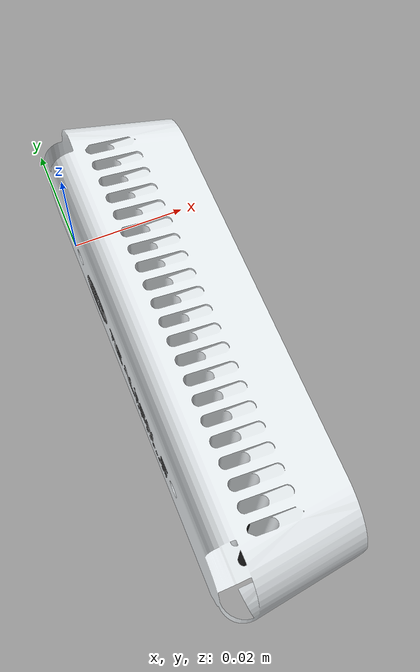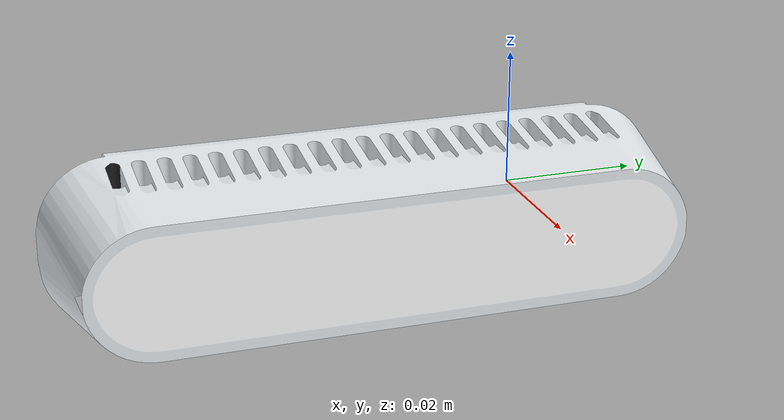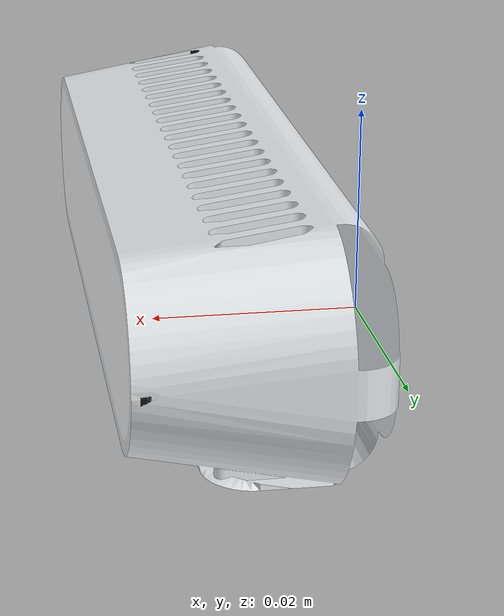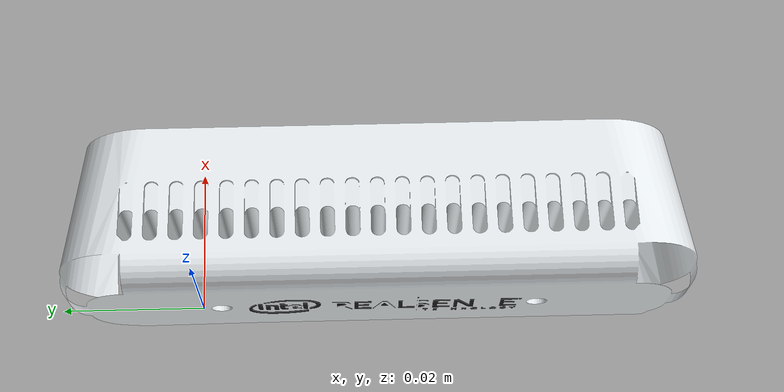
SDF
<?xml version='1.0' encoding='utf-8'?>
<sdf version="1.9">
  <model name="Realsense_d435i_front">
    <pose>0 0 0 0 0 0</pose>
    <self_collide>false</self_collide>
    <static>false</static>
    <link name="realsense_front_link">
      <inertial>
        <pose>0.00358 -0.03 .014 0 0 0</pose>
        <mass>0.061</mass>
        <inertia>
          <ixx>0.0000460804</ixx>
          <ixy>0</ixy>
          <ixz>0</ixz>
          <iyy>0.0000055421</iyy>
          <iyz>0</iyz>
          <izz>0.0000436519</izz>
        </inertia>
      </inertial>
      <visual name="Realsense_d435i_front/visual">
        <pose>0 -0.025 0 0 0 1.5708</pose>
        <geometry>
          <mesh>
            <scale>0.1 0.1 0.1</scale>
            <uri>model://Realsense_d435i_front/meshes/Realsense_d435i.dae</uri>
          </mesh>
        </geometry>
      </visual>
      <collision name="Realsense_d435i_front/collision">
        <pose>0.00358 -0.03 .014 0 0 0</pose>
        <geometry>
          <box>
            <size>0.0175 0.091 0.028</size>
          </box>
        </geometry>
      </collision>
      <sensor name="IMX214" type="camera">
        <gz_frame_id>camera_link</gz_frame_id>
        <pose>0.01233 -0.03 .01878 0 0 0</pose>
        <camera>
          <horizontal_fov>1.51844</horizontal_fov>
          <vertical_fov>1.01</vertical_fov>
          <image>
            <width>1280</width>
            <height>720</height>
          </image>
          <clip>
            <near>0.1</near>
            <far>10</far>
          </clip>
        </camera>
        <always_on>1</always_on>
        <update_rate>30</update_rate>
        <visualize>true</visualize>
        <topic>camera/front/rgb</topic>
      </sensor>
      <sensor name="StereoOV7251" type="depth_camera">
        <gz_frame_id>camera_link</gz_frame_id>
        <pose>0.01233 -0.03 .01878 0 0 0</pose>
        <camera>
          <horizontal_fov>1.51844</horizontal_fov>
          <vertical_fov>1.01</vertical_fov>
          <image>
            <width>1280</width>
            <height>720</height>
            <format>R_FLOAT32</format>
          </image>
          <clip>
            <near>0.3</near>
            <far>3</far>
          </clip>
        </camera>
        <always_on>1</always_on>
        <update_rate>30</update_rate>
        <visualize>true</visualize>
        <topic>camera/front/depth</topic>
      </sensor>
      <gravity>true</gravity>
      <velocity_decay />
    </link>
  </model>
</sdf>
